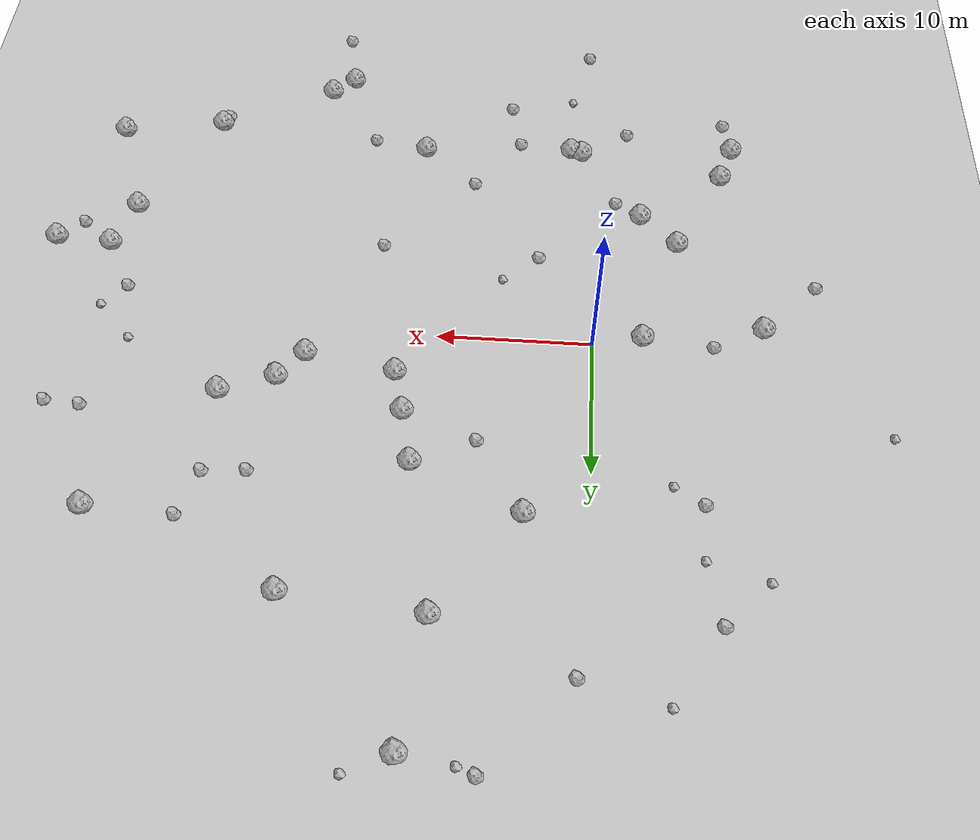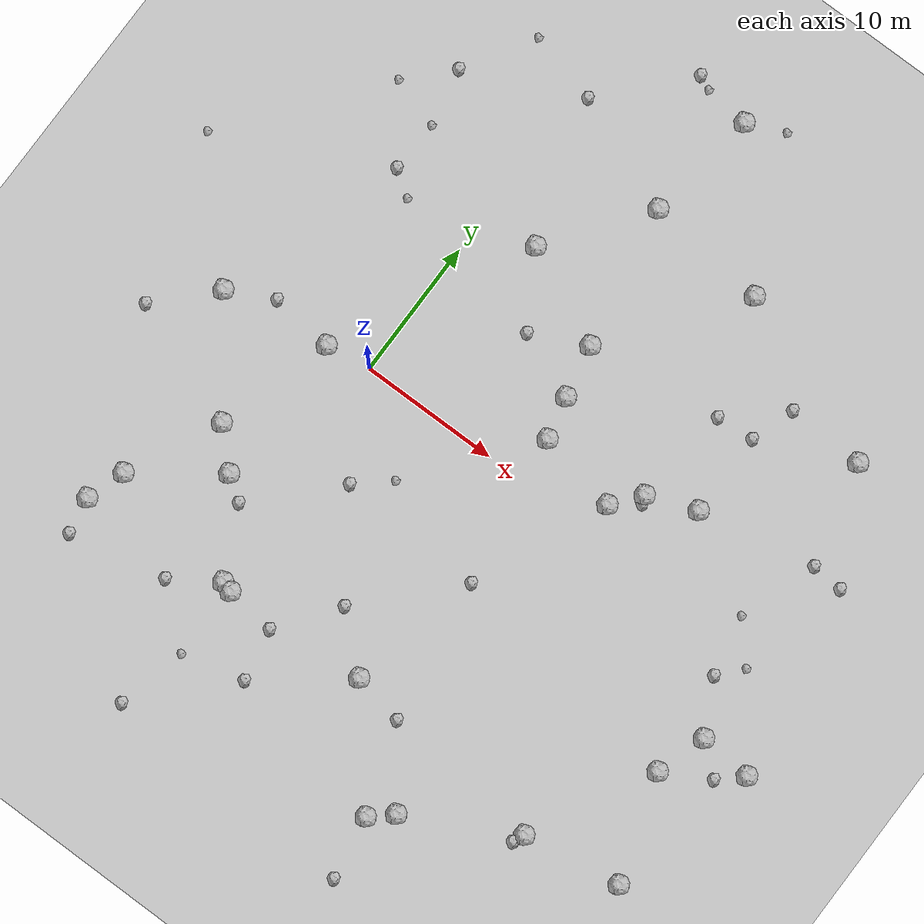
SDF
<sdf version="1.6">
 <world name="default">
  <include><uri>model://custom_ground</uri></include>
  <include><uri>model://sun</uri></include>
  <model name="rock1_0_0">
   <include><uri>model://rock1</uri><pose>3.9937051485219754 13.226636738104084 0.5 0 0 0</pose></include>
  </model>
  <model name="rock1_0_1">
   <include><uri>model://rock1</uri><pose>32.666175566197666 -6.545696962844929 0.5 0 0 0</pose></include>
  </model>
  <model name="rock1_0_2">
   <include><uri>model://rock1</uri><pose>11.712804470818071 6.270797589992291 0.5 0 0 0</pose></include>
  </model>
  <model name="rock1_0_3">
   <include><uri>model://rock1</uri><pose>-9.71944713488018 -18.30141748998962 0.5 0 0 0</pose></include>
  </model>
  <model name="rock1_0_4">
   <include><uri>model://rock1</uri><pose>19.392266764336533 -22.767119106981994 0.5 0 0 0</pose></include>
  </model>
  <model name="rock1_0_5">
   <include><uri>model://rock1</uri><pose>-3.1710704399875453 -0.5338670826136251 0.5 0 0 0</pose></include>
  </model>
  <model name="rock1_0_6">
   <include><uri>model://rock1</uri><pose>-10.956884471903635 -1.6851654338878035 0.5 0 0 0</pose></include>
  </model>
  <model name="rock1_0_7">
   <include><uri>model://rock1</uri><pose>33.9236657187219 -17.667514658195387 0.5 0 0 0</pose></include>
  </model>
  <model name="rock1_0_8">
   <include><uri>model://rock1</uri><pose>10.93800501169305 10.020285194934374 0.5 0 0 0</pose></include>
  </model>
  <model name="rock1_0_9">
   <include><uri>model://rock1</uri><pose>-5.613152850270847 -8.891268982938769 0.5 0 0 0</pose></include>
  </model>
  <model name="rock1_0_10">
   <include><uri>model://rock1</uri><pose>0.9064245646886668 -17.337191068665664 0.5 0 0 0</pose></include>
  </model>
  <model name="rock1_0_11">
   <include><uri>model://rock1</uri><pose>17.881252009598704 -24.112241314119615 0.5 0 0 0</pose></include>
  </model>
  <model name="rock1_0_12">
   <include><uri>model://rock1</uri><pose>1.684599318161716 -17.564629805920042 0.5 0 0 0</pose></include>
  </model>
  <model name="rock1_0_13">
   <include><uri>model://rock1</uri><pose>9.049068790655038 20.185188529607565 0.5 0 0 0</pose></include>
  </model>
  <model name="rock1_0_14">
   <include><uri>model://rock1</uri><pose>23.339197839652137 5.44724359323105 0.5 0 0 0</pose></include>
  </model>
  <model name="rock1_0_15">
   <include><uri>model://rock1</uri><pose>19.84394169574348 4.121600152625767 0.5 0 0 0</pose></include>
  </model>
  <model name="rock1_0_16">
   <include><uri>model://rock1</uri><pose>12.417536280697057 3.2640345103104025 0.5 0 0 0</pose></include>
  </model>
  <model name="rock1_0_17">
   <include><uri>model://rock1</uri><pose>18.253282727955437 2.1128226665537753 0.5 0 0 0</pose></include>
  </model>
  <model name="rock1_0_18">
   <include><uri>model://rock1</uri><pose>29.930326079061537 14.39945391987456 0.5 0 0 0</pose></include>
  </model>
  <model name="rock1_0_19">
   <include><uri>model://rock1</uri><pose>36.42651281007966 -6.84026752303026 0.5 0 0 0</pose></include>
  </model>
  <model name="rock1_0_20">
   <include><uri>model://rock1</uri><pose>11.997931795491038 -17.04063532317275 0.5 0 0 0</pose></include>
  </model>
  <model name="rock1_0_21">
   <include><uri>model://rock1</uri><pose>31.526390785895366 -10.14602298349153 0.5 0 0 0</pose></include>
  </model>
  <model name="rock1_0_22">
   <include><uri>model://rock1</uri><pose>17.742904759940636 19.298448495934466 0.5 0 0 0</pose></include>
  </model>
  <model name="rock1_0_23">
   <include><uri>model://rock1</uri><pose>-3.1585642133456524 -11.329017912613711 0.5 0 0 0</pose></include>
  </model>
  <model name="rock1_0_24">
   <include><uri>model://rock1</uri><pose>10.17415643934508 28.37724096655206 0.5 0 0 0</pose></include>
  </model>
  <model name="rock1_0_25">
   <include><uri>model://rock1</uri><pose>-8.81494869602609 -15.505802928642165 0.5 0 0 0</pose></include>
  </model>
  <model name="rock1_0_26">
   <include><uri>model://rock1</uri><pose>26.982717340063722 -18.798054757076734 0.5 0 0 0</pose></include>
  </model>
  <model name="rock2_0_0">
   <include><uri>model://rock2</uri><pose>-1.5017157984200438 -12.48741205082332 0.3 0 0 0</pose></include>
  </model>
  <model name="rock2_0_1">
   <include><uri>model://rock2</uri><pose>-14.62202311012486 -5.522744863368658 0.3 0 0 0</pose></include>
  </model>
  <model name="rock2_0_2">
   <include><uri>model://rock2</uri><pose>8.303248539393785 -13.780156886353577 0.3 0 0 0</pose></include>
  </model>
  <model name="rock2_0_3">
   <include><uri>model://rock2</uri><pose>30.70132647555051 -2.7666086794580593 0.3 0 0 0</pose></include>
  </model>
  <model name="rock2_0_4">
   <include><uri>model://rock2</uri><pose>31.69223062807246 7.097268239401927 0.3 0 0 0</pose></include>
  </model>
  <model name="rock2_0_5">
   <include><uri>model://rock2</uri><pose>23.316413031879698 11.486771412154333 0.3 0 0 0</pose></include>
  </model>
  <model name="rock2_0_6">
   <include><uri>model://rock2</uri><pose>-2.348886057211203 -19.459271720138158 0.3 0 0 0</pose></include>
  </model>
  <model name="rock2_0_7">
   <include><uri>model://rock2</uri><pose>18.625900720236515 -28.63007431406477 0.3 0 0 0</pose></include>
  </model>
  <model name="rock2_0_8">
   <include><uri>model://rock2</uri><pose>0.36523865719416904 -27.786386261160448 0.3 0 0 0</pose></include>
  </model>
  <model name="rock2_0_9">
   <include><uri>model://rock2</uri><pose>5.856863133902227 29.27154115271587 0.3 0 0 0</pose></include>
  </model>
  <model name="rock2_0_10">
   <include><uri>model://rock2</uri><pose>24.34783962716903 14.651189785116571 0.3 0 0 0</pose></include>
  </model>
  <model name="rock2_0_11">
   <include><uri>model://rock2</uri><pose>20.037219133900727 3.5922275300405744 0.3 0 0 0</pose></include>
  </model>
  <model name="rock2_0_12">
   <include><uri>model://rock2</uri><pose>33.97576716519863 6.901226151351018 0.3 0 0 0</pose></include>
  </model>
  <model name="rock2_0_13">
   <include><uri>model://rock2</uri><pose>20.60175841269205 11.279411008638988 0.3 0 0 0</pose></include>
  </model>
  <model name="rock2_0_14">
   <include><uri>model://rock2</uri><pose>34.80095797489467 -8.327129760608209 0.3 0 0 0</pose></include>
  </model>
  <model name="rock2_0_15">
   <include><uri>model://rock2</uri><pose>3.6585062635211827 -7.049693510824152 0.3 0 0 0</pose></include>
  </model>
  <model name="rock2_0_16">
   <include><uri>model://rock2</uri><pose>5.978688644880069 -21.715106041816263 0.3 0 0 0</pose></include>
  </model>
  <model name="rock2_0_17">
   <include><uri>model://rock2</uri><pose>-9.293570102469692 -20.889914129119692 0.3 0 0 0</pose></include>
  </model>
  <model name="rock2_0_18">
   <include><uri>model://rock2</uri><pose>26.604772820072213 -19.584210600955515 0.3 0 0 0</pose></include>
  </model>
  <model name="rock2_0_19">
   <include><uri>model://rock2</uri><pose>-7.425381356635031 19.83345798642928 0.3 0 0 0</pose></include>
  </model>
  <model name="rock2_0_20">
   <include><uri>model://rock2</uri><pose>14.122039226306676 -7.487581299307845 0.3 0 0 0</pose></include>
  </model>
  <model name="rock2_0_21">
   <include><uri>model://rock2</uri><pose>15.641366057583156 -17.740860884383537 0.3 0 0 0</pose></include>
  </model>
  <model name="rock2_0_22">
   <include><uri>model://rock2</uri><pose>5.244286328130741 -17.997617748012765 0.3 0 0 0</pose></include>
  </model>
  <model name="rock2_0_23">
   <include><uri>model://rock2</uri><pose>7.007984245357459 8.196573484977705 0.3 0 0 0</pose></include>
  </model>
  <model name="rock2_0_24">
   <include><uri>model://rock2</uri><pose>-6.7000273492246905 11.9451737022194 0.3 0 0 0</pose></include>
  </model>
  <model name="rock2_0_25">
   <include><uri>model://rock2</uri><pose>-7.7263164200424015 -0.02803619477660746 0.3 0 0 0</pose></include>
  </model>
  <model name="rock2_0_26">
   <include><uri>model://rock2</uri><pose>0.7129778715243731 23.465629186272253 0.3 0 0 0</pose></include>
  </model>
  <model name="rock3_0_0">
   <include><uri>model://rock3</uri><pose>32.12740904099087 -1.1337549380817897 0.2 0 0 0</pose></include>
  </model>
  <model name="rock3_0_1">
   <include><uri>model://rock3</uri><pose>-18.418424961521293 6.289546999561267 0.2 0 0 0</pose></include>
  </model>
  <model name="rock3_0_2">
   <include><uri>model://rock3</uri><pose>-10.25259081966881 16.82263956704685 0.2 0 0 0</pose></include>
  </model>
  <model name="rock3_0_3">
   <include><uri>model://rock3</uri><pose>12.838736851004391 29.578202345691118 0.2 0 0 0</pose></include>
  </model>
  <model name="rock3_0_4">
   <include><uri>model://rock3</uri><pose>-4.443435940160359 24.77592752832468 0.2 0 0 0</pose></include>
  </model>
  <model name="rock3_0_5">
   <include><uri>model://rock3</uri><pose>-6.594273943156031 15.64468285158857 0.2 0 0 0</pose></include>
  </model>
  <model name="rock3_0_6">
   <include><uri>model://rock3</uri><pose>-4.9085628711002 10.677757977291037 0.2 0 0 0</pose></include>
  </model>
  <model name="rock3_0_7">
   <include><uri>model://rock3</uri><pose>1.5337566856592169 -22.842508634090727 0.2 0 0 0</pose></include>
  </model>
  <model name="rock3_0_8">
   <include><uri>model://rock3</uri><pose>29.777274106951126 1.5177572023425263 0.2 0 0 0</pose></include>
  </model>
  <model name="rock3_0_9">
   <include><uri>model://rock3</uri><pose>6.874272101374345 28.776389902246834 0.2 0 0 0</pose></include>
  </model>
  <model name="rock3_0_10">
   <include><uri>model://rock3</uri><pose>5.953173490907801 -5.048293334038931 0.2 0 0 0</pose></include>
  </model>
 </world>
</sdf>
